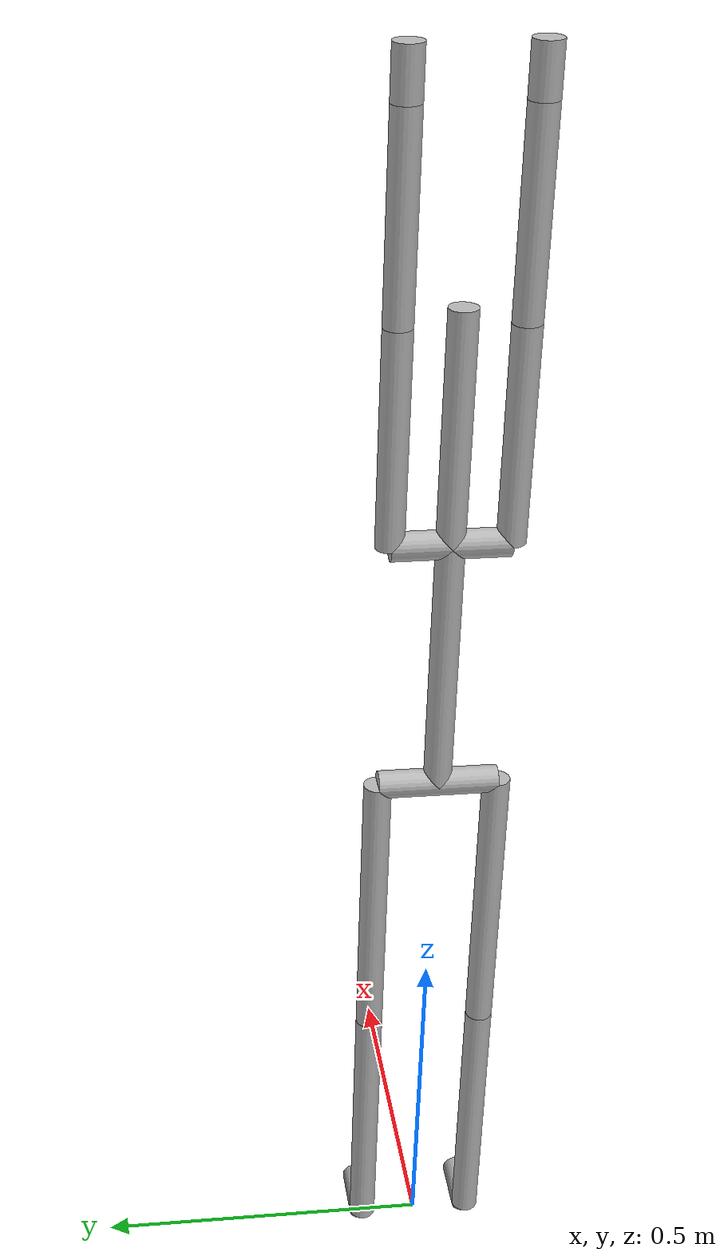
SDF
<?xml version='1.0'?>
<sdf version='1.4'>
  <model name="human">
    <static>false</static>

    <link name='left_foot'>
      <pose>0.041 -0.0855 0 0 1.570796327 0</pose><!-- Move forward by half length of foot. Y coordinate is half the pelvic width. Rotate to horizontal plane -->
      <inertial>
        <mass>1.0817</mass>
        <pose>0 0 0 0 0 0</pose><!-- Link mass is centered -->
        <inertia>
          <ixx>0.00164105</ixx>
          <iyy>0.000227357</iyy>
          <izz>0.00164105</izz>
          <ixy>0</ixy>
          <ixz>0</ixz>
          <iyz>0</iyz>
        </inertia>
      </inertial>
      <collision name='collision'>
        <geometry>
          <cylinder>
            <length>0.082</length>
            <radius>0.02</radius>
          </cylinder>
        </geometry>
        <surface>
          <friction>
            <ode>
              <mu>100</mu>
              <mu2>100</mu2>
            </ode>
          </friction>
        </surface>
       </collision>
       <visual name='visual'>
         <geometry>
          <cylinder>
            <length>0.082</length>
            <radius>0.02</radius>
          </cylinder>
        </geometry>
       </visual>

       <sensor name='left_foot_contact' type='contact'>
          <contact>
            <collision>collision</collision>
          </contact>
        </sensor>
    </link>

    <joint name='left_ankle' type='revolute'>
      <parent>left_leg</parent>
      <child>left_foot</child>
      <pose>0 -0.0855 0 0 1.570796327 0</pose>
      <axis>
        <xyz>0 1 0</xyz>
      </axis>
    </joint>

    <link name='right_foot'>
      <pose>0.041 0.0855 0 0 1.570796327 0</pose><!-- Move forward by half length of foot. Y coordinate is half the pelvic width. Rotate to horizontal plane -->

      <inertial>
        <mass>1.0817</mass>
        <pose>0 0 0 0 0 0</pose><!-- Link mass is centered -->
        <inertia>
          <ixx>0.00164105</ixx>
          <iyy>0.000227357</iyy>
          <izz>0.00164105</izz>
          <ixy>0</ixy>
          <ixz>0</ixz>
          <iyz>0</iyz>
        </inertia>
      </inertial>
      <collision name='collision'>
        <geometry>
          <cylinder>
            <length>0.082</length>
            <radius>0.02</radius>
          </cylinder>
        </geometry>
        <surface>
          <friction>
            <ode>
              <mu>100</mu>
              <mu2>100</mu2>
            </ode>
          </friction>
        </surface>
       </collision>
       <visual name='visual'>
         <geometry>
          <cylinder>
            <length>0.082</length>
            <radius>0.02</radius>
          </cylinder>
        </geometry>
       </visual>

       <sensor name='right_foot_contact' type='contact'>
          <contact>
            <collision>collision</collision>
          </contact>
        </sensor>
    </link>

    <joint name='right_ankle' type='revolute'>
      <parent>right_leg</parent>
      <child>right_foot</child>
      <pose>-0 0.0855 0 0 1.570796327 0</pose>
       <axis>
        <xyz>0 1 0</xyz>
      </axis>
    </joint>

    <link name='left_leg'>
      <pose>0 -0.0855 0.2045 0 0 0</pose><!-- Y coordinate is half the pelvic width. Z coordinate is half the leg height. -->

      <inertial>
        <mass>3.4689</mass>
        <pose>0 0 0.027403 0 0 0</pose>
        <inertia>
          <ixx>0.052923954</ixx>
          <iyy>0.000276446</iyy>
          <izz>0.052923954</izz>
          <ixy>0</ixy>
          <ixz>0</ixz>
          <iyz>0</iyz>
        </inertia>
      </inertial>
      <collision name='collision'>
        <geometry>
          <cylinder>
            <length>0.409</length>
            <radius>0.02</radius>
          </cylinder>
        </geometry>
       </collision>
       <visual name='visual'>
         <geometry>
          <cylinder>
            <length>0.409</length>
            <radius>0.02</radius>
          </cylinder>
        </geometry>
       </visual>
    </link>

    <joint name='left_knee' type='revolute'>
      <parent>left_thigh</parent>
      <child>left_leg</child>
      <pose>0 -0.0855 0.2045 0 0 0</pose>
      <axis>
        <xyz>0 1 0</xyz>
      </axis>
    </joint>

    <link name='right_leg'>
      <pose>0 0.0855 0.2045 0 0 0</pose><!-- Y coordinate is half the pelvic width. Z coordinate is half the leg height -->

      <inertial>
        <mass>3.4689</mass>
        <pose>0 0 0.027403 0 0 0</pose>
        <inertia>
          <ixx>0.052923954</ixx>
          <iyy>0.000276446</iyy>
          <izz>0.052923954</izz>
          <ixy>0</ixy>
          <ixz>0</ixz>
          <iyz>0</iyz>
        </inertia>
      </inertial>
      <collision name='collision'>
        <geometry>
          <cylinder>
            <length>0.409</length>
            <radius>0.02</radius>
          </cylinder>
        </geometry>
       </collision>
       <visual name='visual'>
         <geometry>
          <cylinder>
            <length>0.409</length>
            <radius>0.02</radius>
          </cylinder>
        </geometry>
       </visual>
    </link>

    <joint name='right_knee' type='revolute'>
      <parent>right_thigh</parent>
      <child>right_leg</child>
      <pose>0 0.0855 0.2045 0 0 0</pose>
      <axis>
        <xyz>0 1 0</xyz>
      </axis>
    </joint>

    <link name='left_thigh'>
      <pose>0 -0.0855 0.626 0 0 0</pose><!-- Y coordinate is half the pelvic width. X coordinate is the leg height + 0.5 * thigh height -->

      <inertial>
        <mass>7.46</mass>
        <pose>0 0 0.029078 0 0 0</pose>
        <inertia>
          <ixx>0.146596409</ixx>
          <iyy>0.001321394</iyy>
          <izz>0.146596409</izz>
          <ixy>0</ixy>
          <ixz>0</ixz>
          <iyz>0</iyz>
        </inertia>
      </inertial>
      <collision name='collision'>
        <geometry>
          <cylinder>
            <length>0.434</length>
            <radius>0.02</radius>
          </cylinder>
        </geometry>
       </collision>
       <visual name='visual'>
         <geometry>
          <cylinder>
            <length>0.434</length>
            <radius>0.02</radius>
          </cylinder>
        </geometry>
       </visual>
    </link>

    <joint name='left_hip' type='revolute'>
      <parent>transpelvic_link</parent>
      <child>left_thigh</child>
      <pose>0 -0.0855 0.843 0 0 0</pose> <!--Height leg + thigh -->
      <axis>
        <xyz>0 1 0</xyz>
      </axis>
    </joint>

    <link name='right_thigh'>
      <pose>0 0.0855 0.626 0 0 0</pose><!-- Y coordinate is half the pelvic width. X coordinate is the leg height + 0.5 * thigh height -->

      <inertial>
        <mass>7.46</mass>
        <pose>0 0 0.029078 0 0 0</pose>
        <inertia>
          <ixx>0.146596409</ixx>
          <iyy>0.001321394</iyy>
          <izz>0.146596409</izz>
          <ixy>0</ixy>
          <ixz>0</ixz>
          <iyz>0</iyz>
        </inertia>
      </inertial>
      <collision name='collision'>
        <geometry>
          <cylinder>
            <length>0.434</length>
            <radius>0.02</radius>
          </cylinder>
        </geometry>
       </collision>
       <visual name='visual'>
         <geometry>
          <cylinder>
            <length>0.434</length>
            <radius>0.02</radius>
          </cylinder>
        </geometry>
       </visual>
    </link>

    <joint name='right_hip' type='revolute'>
      <parent>transpelvic_link</parent>
      <child>right_thigh</child>
      <pose>0 0.0855 0.843 0 0 0</pose> <!-- leg + thigh height -->
      <axis>
        <xyz>0 1 0</xyz>
      </axis>
    </joint>

    <link name='transpelvic_link'>
      <pose>0 0 0.843 0 1.570796327 1.570796327</pose><!-- Height of leg + thigh, rotated to ground plane and rotated about the trunk -->

      <!-- No inertial properties. Visualization only -->
      <collision name='collision'>
        <geometry>
          <cylinder>
            <length>0.171</length>
            <radius>0.02</radius>
          </cylinder>
        </geometry>
       </collision>
       <visual name='visual'>
         <geometry>
          <cylinder>
            <length>0.171</length>
            <radius>0.02</radius>
          </cylinder>
        </geometry>
       </visual>
    </link>

    <joint name='lower_spine' type='revolute'>
      <parent>trunk</parent>
      <child>transpelvic_link</child>
      <pose>0 0 0.843 0 0 0</pose>
      <axis>
        <xyz>0 1 0</xyz>
      </axis>
    </joint>

    <link name='trunk'>
      <pose>0 0 1.031 0 0 0</pose><!-- Height of leg + thigh + 0.5 * trunk-->

      <inertial>
        <mass>37.0762</mass>
        <pose>0 0 0 0 0 0</pose><!-- Link mass is centered -->
        <inertia>
          <ixx>1.674614776</ixx>
          <ixy>0</ixy>
          <ixz>0</ixz>
          <iyz>0</iyz>
          <iyy>0.01679029</iyy>
          <izz>1.674614776</izz>
        </inertia>
      </inertial>
      <collision name='collision'>
        <geometry>
          <cylinder>
            <length>0.376</length>
            <radius>0.02</radius>
          </cylinder>
        </geometry>
       </collision>
       <visual name='visual'>
         <geometry>
          <cylinder>
            <length>0.376</length>
            <radius>0.02</radius>
          </cylinder>
        </geometry>
       </visual>
    </link>

    <joint name='upper_spine' type='revolute'>
      <parent>trunk</parent>
      <child>clavicular_link</child>
      <pose>0 0 1.219 0 0 0</pose>
      <axis>
        <xyz>0 1 0</xyz>
      </axis>
    </joint>

    <link name='clavicular_link'>
      <pose>0 0 1.219 0 1.570796327 1.570796327</pose><!-- Height of leg + thigh + trunk, rotated to ground plane and rotated about the trunk -->

      <!-- No inertial properties. Visualization only -->
      <collision name='collision'>
        <geometry>
          <cylinder>
            <length>0.163</length>
            <radius>0.02</radius>
          </cylinder>
        </geometry>
       </collision>
       <visual name='visual'>
         <geometry>
          <cylinder>
            <length>0.163</length>
            <radius>0.02</radius>
          </cylinder>
        </geometry>
       </visual>
    </link>

    <joint name='neck' type='revolute'>
      <parent>clavicular_link</parent>
      <child>head_neck</child>
      <pose>0 0 1.219 0 0 0</pose>
      <axis>
        <xyz>0 1 0</xyz>
      </axis>
    </joint>

    <link name='head_neck'>
      <pose>0 0 1.3815 0 0 0</pose><!-- Height of leg + thigh + trunk + 0.5 * head-neck -->

      <inertial>
        <mass>6.0426</mass>
        <pose>0 0 0.1625 0 0 0</pose>
        <inertia>
          <ixx>0.156387114</ixx>
          <iyy>0.000734459</iyy>
          <izz>0.156387114</izz>
          <ixy>0</ixy>
          <ixz>0</ixz>
          <iyz>0</iyz>
        </inertia>
      </inertial>
      <collision name='collision'>
        <geometry>
          <cylinder>
            <length>0.325</length>
            <radius>0.02</radius>
          </cylinder>
        </geometry>
       </collision>
       <visual name='visual'>
         <geometry>
          <cylinder>
            <length>0.325</length>
            <radius>0.02</radius>
          </cylinder>
        </geometry>
       </visual>
    </link>

    <link name='left_upper_arm'>
      <pose>0 -0.0815 1.37 0 0 0</pose><!-- Y coordinate is half the pelvic width. Z coordinate is leg + thigh + trunk + 0.5 * upper arm -->

      <inertial>
        <mass>2.0888</mass>
        <pose>0 0 -0.019328 0 0 0</pose>
        <inertia>
          <ixx>0.019752519</ixx>
          <iyy>9.28219E-05</iyy>
          <izz>0.019752519</izz>
          <ixy>0</ixy>
          <ixz>0</ixz>
          <iyz>0</iyz>
        </inertia>
      </inertial>
      <collision name='collision'>
        <geometry>
          <cylinder>
            <length>0.302</length>
            <radius>0.02</radius>
          </cylinder>
        </geometry>
       </collision>
       <visual name='visual'>
         <geometry>
          <cylinder>
            <length>0.302</length>
            <radius>0.02</radius>
          </cylinder>
        </geometry>
       </visual>
    </link>

    <joint name='left_shoulder' type='revolute'>
      <parent>clavicular_link</parent>
      <child>left_upper_arm</child>
      <pose>0 -0.0815 1.219 0 0 0</pose>
      <axis>
        <xyz>0 1 0</xyz>
      </axis>
    </joint>

    <link name='right_upper_arm'>
      <pose>0 0.0815 1.37 0 0 0</pose><!-- Y coordinate is half the pelvic width. Z coordinate is leg + thigh + trunk + 0.5 * upper arm -->

      <inertial>
        <mass>2.0888</mass>
        <pose>0 0 -0.019328 0 0 0</pose>
        <inertia>
          <ixx>0.019752519</ixx>
          <iyy>9.28219E-05</iyy>
          <izz>0.019752519</izz>
          <ixy>0</ixy>
          <ixz>0</ixz>
          <iyz>0</iyz>
        </inertia>
      </inertial>
      <collision name='collision'>
        <geometry>
          <cylinder>
            <length>0.302</length>
            <radius>0.02</radius>
          </cylinder>
        </geometry>
       </collision>
       <visual name='visual'>
         <geometry>
          <cylinder>
            <length>0.302</length>
            <radius>0.02</radius>
          </cylinder>
        </geometry>
       </visual>
    </link>

    <joint name='right_shoulder' type='revolute'>
      <parent>clavicular_link</parent>
      <child>right_upper_arm</child>
      <pose>0 0.0815 1.219 0 0 0</pose>
      <axis>
        <xyz>0 1 0</xyz>
      </axis>
    </joint>

    <link name='left_forearm'>
      <pose>0 -0.0815 1.657 0 0 0</pose><!-- Y coordinate is half the pelvic width. Z coordinate is leg + thigh + trunk + upper arm + 0.5 * forearm -->

      <inertial>
        <mass>1.1936</mass>
        <pose>0 0 -0.01904 0 0 0</pose>
        <inertia>
          <ixx>0.008107405</ixx>
          <iyy>4.65747E-05</iyy>
          <izz>0.008107405</izz>
          <ixy>0</ixy>
          <ixz>0</ixz>
          <iyz>0</iyz>
        </inertia>
      </inertial>
      <collision name='collision'>
        <geometry>
          <cylinder>
            <length>0.272</length>
            <radius>0.02</radius>
          </cylinder>
        </geometry>
       </collision>
       <visual name='visual'>
         <geometry>
          <cylinder>
            <length>0.272</length>
            <radius>0.02</radius>
          </cylinder>
        </geometry>
       </visual>
    </link>

    <joint name='left_elbow' type='revolute'>
      <parent>left_upper_arm</parent>
      <child>left_forearm</child>
      <pose>0 -0.0815 1.521 0 0 0</pose>
      <axis>
        <xyz>0 1 0</xyz>
      </axis>
    </joint>

    <link name='right_forearm'>
      <pose>0 0.0815 1.657 0 0 0</pose><!-- Y coordinate is half the pelvic width. Z coordinate is leg + thigh + trunk + upper arm + 0.5 * forearm -->

      <inertial>
        <mass>1.1936</mass>
        <pose>0 0 -0.01904 0 0 0</pose>
        <inertia>
          <ixx>0.008107405</ixx>
          <iyy>4.65747E-05</iyy>
          <izz>0.008107405</izz>
          <ixy>0</ixy>
          <ixz>0</ixz>
          <iyz>0</iyz>
        </inertia>
      </inertial>
      <collision name='collision'>
        <geometry>
          <cylinder>
            <length>0.272</length>
            <radius>0.02</radius>
          </cylinder>
        </geometry>
       </collision>
       <visual name='visual'>
         <geometry>
          <cylinder>
            <length>0.272</length>
            <radius>0.02</radius>
          </cylinder>
        </geometry>
       </visual>
    </link>

    <joint name='right_elbow' type='revolute'>
      <parent>right_upper_arm</parent>
      <child>right_forearm</child>
      <pose>0 0.0815 1.521 0 0 0</pose>
      <axis>
        <xyz>0 1 0</xyz>
      </axis>
    </joint>

    <link name='left_hand'>
      <pose>0 -0.0815 1.828 0 0 0</pose><!-- Y coordinate is half the pelvic width. Z coordinate is leg + thigh + trunk + upper arm + forearm + 0.5 * hand -->

      <inertial>
        <mass>0.4476</mass>
        <pose>0 0 0.00042 0 0 0</pose>
        <inertia>
          <ixx>0.000193464</ixx>
          <iyy>7.36224E-06</iyy>
          <izz>0.000193464</izz>
          <ixy>0</ixy>
          <ixz>0</ixz>
          <iyz>0</iyz>
        </inertia>
      </inertial>
      <collision name='collision'>
        <geometry>
          <cylinder>
            <length>0.07</length>
            <radius>0.02</radius>
          </cylinder>
        </geometry>
       </collision>
       <visual name='visual'>
         <geometry>
          <cylinder>
            <length>0.07</length>
            <radius>0.02</radius>
          </cylinder>
        </geometry>
       </visual>
    </link>

    <joint name='left_wrist' type='revolute'>
      <parent>left_forearm</parent>
      <child>left_hand</child>
      <pose>0 -0.0815 1.793 0 0 0</pose>
      <axis>
        <xyz>0 1 0</xyz>
      </axis>
    </joint>

    <link name='right_hand'>
      <pose>0 0.0815 1.828 0 0 0</pose><!-- Y coordinate is half the pelvic width. Z coordinate is leg + thigh + trunk + upper arm + forearm + 0.5 * hand -->

      <inertial>
        <mass>0.4476</mass>
        <pose>0 0 0.00042 0 0 0</pose>
        <inertia>
          <ixx>0.000193464</ixx>
          <iyy>7.36224E-06</iyy>
          <izz>0.000193464</izz>
          <ixy>0</ixy>
          <ixz>0</ixz>
          <iyz>0</iyz>
        </inertia>
      </inertial>
      <collision name='collision'>
        <geometry>
          <cylinder>
            <length>0.07</length>
            <radius>0.02</radius>
          </cylinder>
        </geometry>
       </collision>
       <visual name='visual'>
         <geometry>
          <cylinder>
            <length>0.07</length>
            <radius>0.02</radius>
          </cylinder>
        </geometry>
       </visual>
    </link>

    <joint name='right_wrist' type='revolute'>
      <parent>right_forearm</parent>
      <child>right_hand</child>
      <pose>0 0.0815 1.793 0 0 0</pose>
      <axis>
        <xyz>0 1 0</xyz>
      </axis>
    </joint>
  </model>
</sdf>
